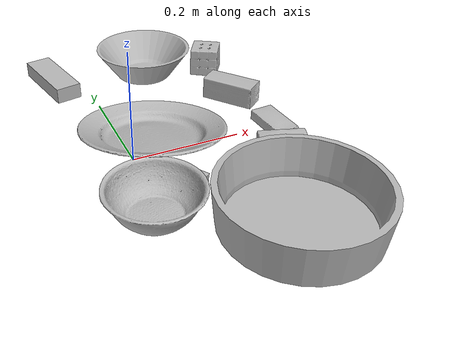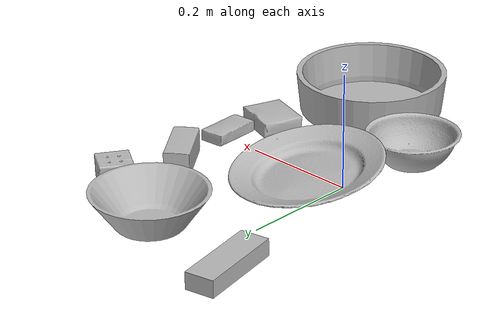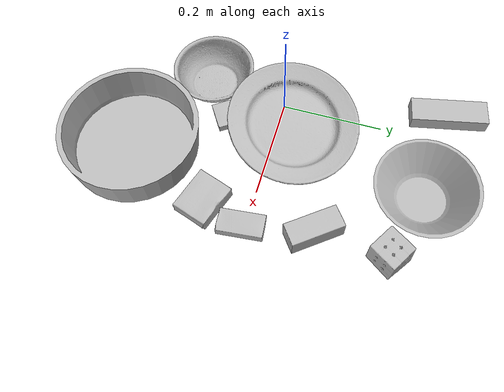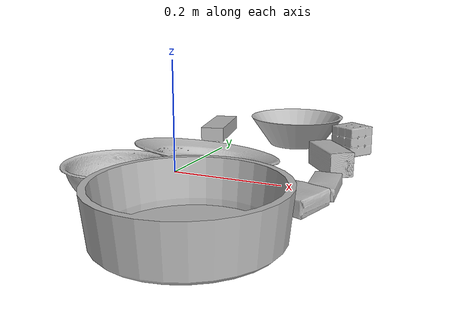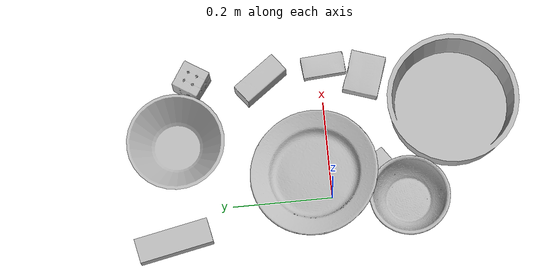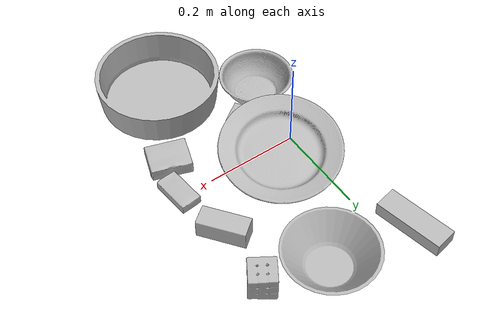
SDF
<sdf version="1.4">
  <world name="default">
    <light name="light1" type="point">
      <pose>0 0 1 0 0 0</pose>
      <diffuse>3 3 3 1</diffuse>
      <specular>3 3 3 1</specular>
    </light>
    <light name="light2" type="point">
      <pose>0 0.5 2 0 0 0</pose>
      <diffuse>1 1 1 1</diffuse>
      <specular>1 1 1 1</specular>
    </light>
    <light name="light3" type="point">
      <pose>0 0.5 2 0 0 0</pose>
      <diffuse>3 3 3 1</diffuse>
      <specular>3 3 3 1</specular>
    </light>
    <scene>
      <ambient>0.7 0.7 0.7</ambient>
    </scene>
    <model name="box1">
      <link name="link_box1">
        <collision name="default">
          <geometry>
            <mesh>
              <uri>model://gelatin_box/collision_meshes/collision.obj</uri>
              <scale>1.0 1.0 1.0</scale>
            </mesh>
          </geometry>
          <surface>
            <friction>
              <ode>
                <mu>0.5</mu>
                <mu2>0.5</mu2>
              </ode>
            </friction>
          <contact>
        <ode>
            <max_vel>0</max_vel>
            <min_depth>0.0001</min_depth>
            <kp>1e8</kp>
        </ode>
    </contact></surface>
        </collision>
        <visual name="default">
          <geometry>
            <mesh>
              <uri>model://gelatin_box/visual_meshes/visual.dae</uri>
              <scale>1.0 1.0 1.0</scale>
            </mesh>
          </geometry>
        </visual>
        <inertial>
          <mass>0.1979130208492279</mass>
          <pose>0.0004319618456065655 0.00011156871914863586 -0.0003640321083366871 -0.0010503722055948273 -0.004755818222760974 0.016440559471883928</pose>
          <inertia>
            <ixx>0.00013971045</ixx>
            <iyy>9.9794444e-05</iyy>
            <izz>0.00021267045</izz>
            <ixy>0</ixy>
            <ixz>0</ixz>
            <iyz>0</iyz>
          </inertia>
        </inertial>
      </link>
      <pose>0.24663707613945007 -0.08930211514234543 0.015168312005698681 0.005597465684410589 -0.007304557579683422 1.2401718157935067</pose>
    </model>
    <model name="box11">
      <link name="link_box11">
        <collision name="default">
          <geometry>
            <mesh>
              <uri>model://sugar_box/collision_meshes/collision.obj</uri>
              <scale>0.5 0.5 0.5</scale>
            </mesh>
          </geometry>
          <surface>
            <friction>
              <ode>
                <mu>0.5</mu>
                <mu2>0.5</mu2>
              </ode>
            </friction>
          <contact>
        <ode>
            <max_vel>0</max_vel>
            <min_depth>0.0001</min_depth>
            <kp>1e8</kp>
        </ode>
    </contact></surface>
        </collision>
        <visual name="default">
          <geometry>
            <mesh>
              <uri>model://sugar_box/visual_meshes/visual.dae</uri>
              <scale>0.5 0.5 0.5</scale>
            </mesh>
          </geometry>
        </visual>
        <inertial>
          <mass>0.10992158949375153</mass>
          <pose>0.0005171863595023751 1.924554817378521e-05 -0.00018182402709499002 -0.00040462650409139634 0.0010506636387973133 0.002615378555960767</pose>
          <inertia>
            <ixx>2.2896586e-05</ixx>
            <iyy>7.400649e-05</iyy>
            <izz>8.8594585e-05</izz>
            <ixy>0</ixy>
            <ixz>0</ixz>
            <iyz>0</iyz>
          </inertia>
        </inertial>
      </link>
      <pose>0.2737763822078705 -0.00735363457351923 0.011399303562939167 0.000774848815107774 -0.0234328955670697 1.651725733665467</pose>
    </model>
    <model name="box2">
      <link name="link_box2">
        <collision name="default">
          <geometry>
            <mesh>
              <uri>model://jenga/collision_meshes/collision.obj</uri>
              <scale>1.0 1.0 1.0</scale>
            </mesh>
          </geometry>
          <surface>
            <friction>
              <ode>
                <mu>0.5</mu>
                <mu2>0.5</mu2>
              </ode>
            </friction>
          <contact>
        <ode>
            <max_vel>0</max_vel>
            <min_depth>0.0001</min_depth>
            <kp>1e8</kp>
        </ode>
    </contact></surface>
        </collision>
        <visual name="default">
          <geometry>
            <mesh>
              <uri>model://jenga/visual_meshes/visual.dae</uri>
              <scale>1.0 1.0 1.0</scale>
            </mesh>
          </geometry>
        </visual>
        <inertial>
          <mass>0.12651896476745605</mass>
          <pose>-2.502855807051674e-07 -0.00010250010382151231 -4.0923401684267446e-05 0.0 -7.34215461761844e-07 0.0</pose>
          <inertia>
            <ixx>3.5010868e-05</ixx>
            <iyy>0.00023723267</iyy>
            <izz>0.00025326604</izz>
            <ixy>0</ixy>
            <ixz>0</ixz>
            <iyz>0</iyz>
          </inertia>
        </inertial>
      </link>
      <pose>-0.06103784963488579 0.32271450757980347 0.014999999664723873 2.3413049256722208e-08 1.8746108054702164e-09 1.7735720098739003</pose>
    </model>
    <model name="box21">
      <link name="link_box21">
        <collision name="default">
          <geometry>
            <mesh>
              <uri>model://wood_block/collision_meshes/collision.obj</uri>
              <scale>0.5 0.5 0.5</scale>
            </mesh>
          </geometry>
          <surface>
            <friction>
              <ode>
                <mu>0.5</mu>
                <mu2>0.5</mu2>
              </ode>
            </friction>
          <contact>
        <ode>
            <max_vel>0</max_vel>
            <min_depth>0.0001</min_depth>
            <kp>1e8</kp>
        </ode>
    </contact></surface>
        </collision>
        <visual name="default">
          <geometry>
            <mesh>
              <uri>model://wood_block/visual_meshes/visual.dae</uri>
              <scale>0.5 0.5 0.5</scale>
            </mesh>
          </geometry>
        </visual>
        <inertial>
          <mass>0.17952100932598114</mass>
          <pose>-2.906657982748584e-06 -0.00028540476341731846 0.00013204291462898254 -0.052208472466385096 -0.005192695659959234 -0.0068613786899108485</pose>
          <inertia>
            <ixx>6.0056565e-05</ixx>
            <iyy>0.0001897187</iyy>
            <izz>0.00018900905</izz>
            <ixy>0</ixy>
            <ixz>0</ixz>
            <iyz>0</iyz>
          </inertia>
        </inertial>
      </link>
      <pose>0.25178149342536926 0.12275223433971405 0.02262926660478115 -0.005208375212186447 0.005718767426971553 -0.9216906869395675</pose>
    </model>
    <model name="box3">
      <link name="link_box3">
        <collision name="default">
          <geometry>
            <mesh>
              <uri>model://rubiks_cube/collision_meshes/collision.obj</uri>
              <scale>1.0 1.0 1.0</scale>
            </mesh>
          </geometry>
          <surface>
            <friction>
              <ode>
                <mu>0.5</mu>
                <mu2>0.5</mu2>
              </ode>
            </friction>
          <contact>
        <ode>
            <max_vel>0</max_vel>
            <min_depth>0.0001</min_depth>
            <kp>1e8</kp>
        </ode>
    </contact></surface>
        </collision>
        <visual name="default">
          <geometry>
            <mesh>
              <uri>model://rubiks_cube/visual_meshes/visual.dae</uri>
              <scale>1.0 1.0 1.0</scale>
            </mesh>
          </geometry>
        </visual>
        <inertial>
          <mass>0.2539031207561493</mass>
          <pose>2.6721041649580002e-05 5.2569666877388954e-05 -7.264316082000732e-06 -0.05467208428881645 -0.09814040742269707 -0.034455380154792534</pose>
          <inertia>
            <ixx>0.00014029852</ixx>
            <iyy>0.00013964424</iyy>
            <izz>0.00014146113</izz>
            <ixy>0</ixy>
            <ixz>0</ixz>
            <iyz>0</iyz>
          </inertia>
        </inertial>
      </link>
      <pose>0.26052117347717285 0.2623704969882965 0.02867894433438778 -5.339506915530459e-06 -2.245284548052688e-06 -0.5763209335975885</pose>
    </model>
    <model name="box31">
      <link name="link_box31">
        <collision name="default">
          <geometry>
            <mesh>
              <uri>model://pudding_box/collision_meshes/collision.obj</uri>
              <scale>0.5 0.5 0.5</scale>
            </mesh>
          </geometry>
          <surface>
            <friction>
              <ode>
                <mu>0.5</mu>
                <mu2>0.5</mu2>
              </ode>
            </friction>
          <contact>
        <ode>
            <max_vel>0</max_vel>
            <min_depth>0.0001</min_depth>
            <kp>1e8</kp>
        </ode>
    </contact></surface>
        </collision>
        <visual name="default">
          <geometry>
            <mesh>
              <uri>model://pudding_box/visual_meshes/visual.dae</uri>
              <scale>0.5 0.5 0.5</scale>
            </mesh>
          </geometry>
        </visual>
        <inertial>
          <mass>0.030597222968935966</mass>
          <pose>0.00024474109522998333 0.00040339428232982755 -0.00025944135268218815 0.005213101792545572 -0.006603798718575614 0.020079825159656634</pose>
          <inertia>
            <ixx>8.6471455e-06</ixx>
            <iyy>5.8178607e-06</iyy>
            <izz>1.2769769e-05</izz>
            <ixy>0</ixy>
            <ixz>0</ixz>
            <iyz>0</iyz>
          </inertia>
        </inertial>
      </link>
      <pose>0.05745831876993179 -0.10497721284627914 0.009862899780273438 0.02234846612494257 -0.01139170533701295 2.163966301684732</pose>
    </model>
    <model name="plate1">
      <link name="link_plate1">
        <collision name="default">
          <geometry>
            <mesh>
              <uri>model://pan_tefal/collision_meshes/collision.obj</uri>
              <scale>1.0 1.0 1.0</scale>
            </mesh>
          </geometry>
          <surface>
            <friction>
              <ode>
                <mu>0.5</mu>
                <mu2>0.5</mu2>
              </ode>
            </friction>
          <contact>
        <ode>
            <max_vel>0</max_vel>
            <min_depth>0.0001</min_depth>
            <kp>1e8</kp>
        </ode>
    </contact></surface>
        </collision>
        <visual name="default">
          <geometry>
            <mesh>
              <uri>model://pan_tefal/visual_meshes/visual.dae</uri>
              <scale>1.0 1.0 1.0</scale>
            </mesh>
          </geometry>
        </visual>
        <inertial>
          <mass>1.6321053504943848</mass>
          <pose>-0.00018001697026193142 3.279276279499754e-05 -0.00851493887603283 0.0008190355512640809 -0.00033013448733331557 -0.33186498661790637</pose>
          <inertia>
            <ixx>0.011266344</ixx>
            <iyy>0.011338978</iyy>
            <izz>0.02073917</izz>
            <ixy>0</ixy>
            <ixz>0</ixz>
            <iyz>0</iyz>
          </inertia>
        </inertial>
      </link>
      <pose>0.16637979447841644 -0.2579749822616577 0.03805001825094223 -1.036676415492943e-08 1.2454518551013794e-09 -1.084665874973125</pose>
    </model>
    <model name="bowl1">
      <link name="link_bowl1">
        <collision name="default">
          <geometry>
            <mesh>
              <uri>model://bowl/collision_meshes/collision.obj</uri>
              <scale>1.0 1.0 1.0</scale>
            </mesh>
          </geometry>
          <surface>
            <friction>
              <ode>
                <mu>0.5</mu>
                <mu2>0.5</mu2>
              </ode>
            </friction>
          <contact>
        <ode>
            <max_vel>0</max_vel>
            <min_depth>0.0001</min_depth>
            <kp>1e8</kp>
        </ode>
    </contact></surface>
        </collision>
        <visual name="default">
          <geometry>
            <mesh>
              <uri>model://bowl/visual_meshes/visual.dae</uri>
              <scale>1.0 1.0 1.0</scale>
            </mesh>
          </geometry>
        </visual>
        <inertial>
          <mass>0.08853479474782944</mass>
          <pose>0.0002044534485321492 -0.0010302085429430008 -0.0008042657864280045 -0.015764086220495594 0.014546762208611713 0.7140398935341641</pose>
          <inertia>
            <ixx>0.00020337135</ixx>
            <iyy>0.00019882726</iyy>
            <izz>0.00034214073</izz>
            <ixy>0</ixy>
            <ixz>0</ixz>
            <iyz>0</iyz>
          </inertia>
        </inertial>
      </link>
      <pose>-0.018772456794977188 -0.15255722403526306 0.02778003364801407 2.53281364483718e-07 -1.065885435437798e-06 -2.3266278250646857</pose>
    </model>
    <model name="plate2">
      <link name="link_plate2">
        <collision name="default">
          <geometry>
            <mesh>
              <uri>model://plate/collision_meshes/collision.obj</uri>
              <scale>1.0 1.0 1.0</scale>
            </mesh>
          </geometry>
          <surface>
            <friction>
              <ode>
                <mu>0.5</mu>
                <mu2>0.5</mu2>
              </ode>
            </friction>
          <contact>
        <ode>
            <max_vel>0</max_vel>
            <min_depth>0.0001</min_depth>
            <kp>1e8</kp>
        </ode>
    </contact></surface>
        </collision>
        <visual name="default">
          <geometry>
            <mesh>
              <uri>model://plate/visual_meshes/visual.dae</uri>
              <scale>1.0 1.0 1.0</scale>
            </mesh>
          </geometry>
        </visual>
        <inertial>
          <mass>0.10531359910964966</mass>
          <pose>-0.0006044624024070799 0.00027825951110571623 -0.001056199660524726 0.0022187923451504944 -0.0032254757952566134 0.45260828030698763</pose>
          <inertia>
            <ixx>0.00049265905</ixx>
            <iyy>0.00048794702</iyy>
            <izz>0.0009635677</izz>
            <ixy>0</ixy>
            <ixz>0</ixz>
            <iyz>0</iyz>
          </inertia>
        </inertial>
      </link>
      <pose>0.04882783070206642 0.031243301928043365 0.02674352377653122 0.10552308286254847 0.13796276619592662 1.7862189287240935</pose>
    </model>
    <model name="bowl2">
      <link name="link_bowl2">
        <collision name="default">
          <geometry>
            <mesh>
              <uri>model://bowl_a/collision_meshes/collision.obj</uri>
              <scale>1.0 1.0 1.0</scale>
            </mesh>
          </geometry>
          <surface>
            <friction>
              <ode>
                <mu>0.5</mu>
                <mu2>0.5</mu2>
              </ode>
            </friction>
          <contact>
        <ode>
            <max_vel>0</max_vel>
            <min_depth>0.0001</min_depth>
            <kp>1e8</kp>
        </ode>
    </contact></surface>
        </collision>
        <visual name="default">
          <geometry>
            <mesh>
              <uri>model://bowl_a/visual_meshes/visual.dae</uri>
              <scale>1.0 1.0 1.0</scale>
            </mesh>
          </geometry>
        </visual>
        <inertial>
          <mass>0.4180941581726074</mass>
          <pose>0.000278673687716946 4.731199442176148e-05 -0.0013765294570475817 -0.0009805326545729344 -0.001093820496942545 -0.19124076645491772</pose>
          <inertia>
            <ixx>0.0011903334</ixx>
            <iyy>0.0011976411</iyy>
            <izz>0.0021170534</izz>
            <ixy>0</ixy>
            <ixz>0</ixz>
            <iyz>0</iyz>
          </inertia>
        </inertial>
      </link>
      <pose>0.13221368193626404 0.30206355452537537 0.030382990837097168 -2.4704822527894244e-08 1.1446327612703154e-08 2.6882475697964496</pose>
    </model>
  <physics type="ode">
      <max_contacts>50</max_contacts>
      <ode>
        <solver>
          <type>quick</type>
          <iters>75</iters>
        </solver>
        <constraints>
          <contact_max_correcting_vel>0</contact_max_correcting_vel>
          <contact_surface_layer>0</contact_surface_layer>
        </constraints>
      </ode>
    </physics></world>
</sdf>
